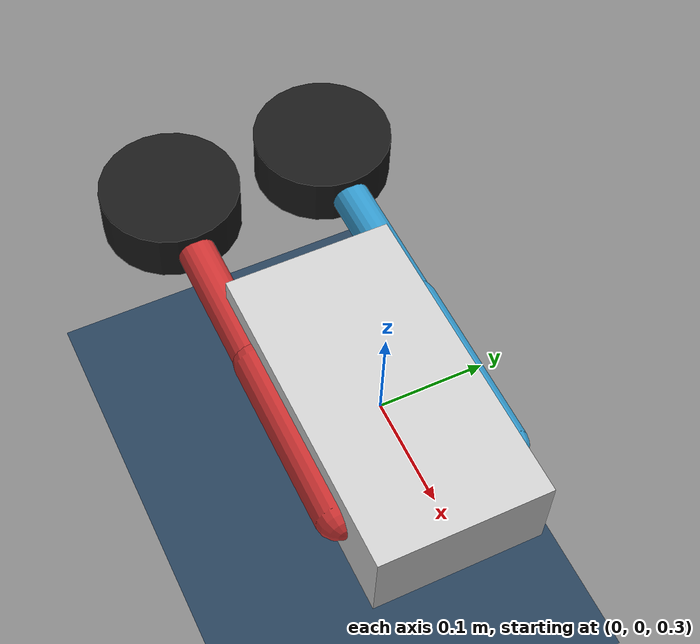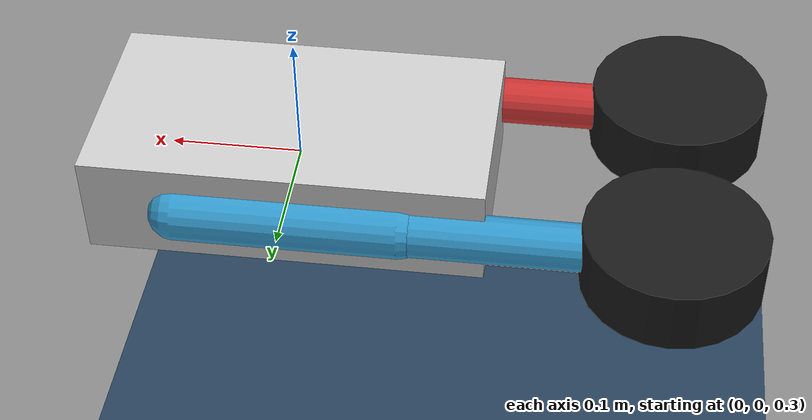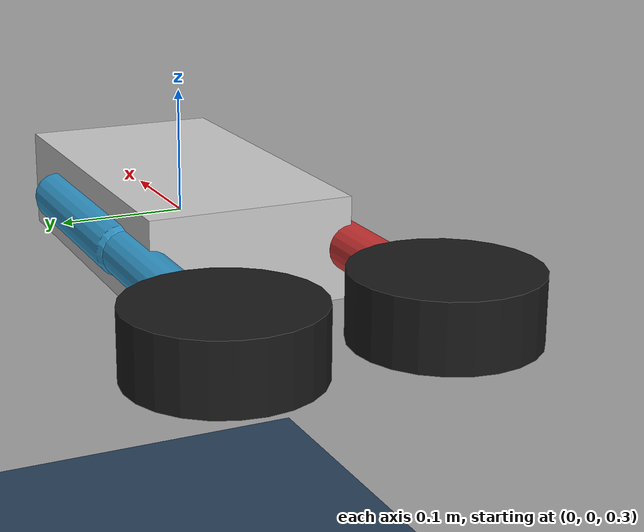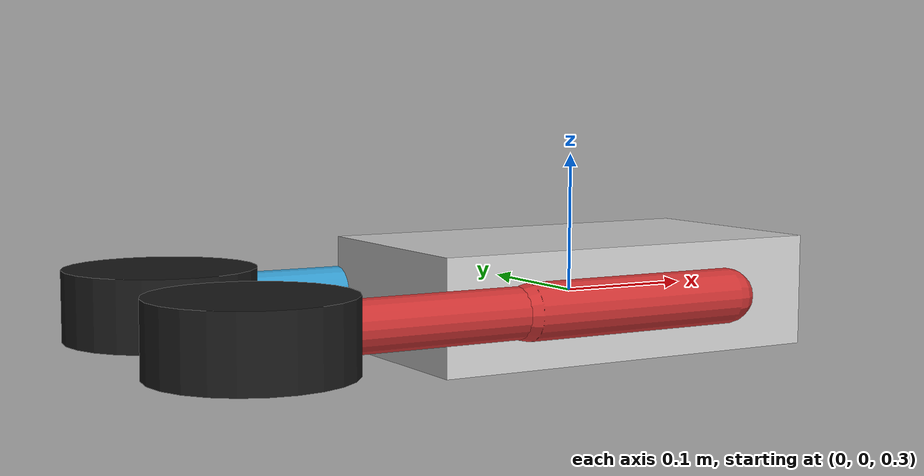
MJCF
<mujoco model="serialleg">
  <compiler angle="radian" meshdir="../meshes" autolimits="true"/>

  <option timestep="0.005" iterations="50" solver="Newton" cone="pyramidal"/>

  <asset>
    <!-- Ground plane texture -->
    <texture name="grid" type="2d" builtin="checker" width="512" height="512" rgb1=".1 .2 .3" rgb2=".2 .3 .4"/>
    <material name="grid" texture="grid" texrepeat="1 1" texuniform="true" reflectance=".2"/>
  </asset>

  <worldbody>
    <!-- Ground plane -->
    <geom name="floor" type="plane" size="0 0 .05" material="grid" friction="0.8 0.005 0.0001"/>
    <light name="spotlight" mode="targetbodycom" target="base_link" diffuse=".8 .8 .8" specular="0.3 0.3 0.3" pos="0 -6 4" cutoff="30"/>

    <!-- Robot base -->
    <body name="base_link" pos="0 0 0.30">
      <freejoint/>
      <inertial pos="0 0 0" mass="11.88" diaginertia="0.157 0.164 0.258"/>
      <geom name="base_geom" type="box" size="0.15 0.08 0.04" rgba="0.8 0.8 0.8 1" friction="0.8 0.005 0.0001"/>

      <!-- Left leg -->
      <body name="lf0_Link" pos="0.08 0.08 0">
        <inertial pos="-0.08 0 0" mass="0.30" diaginertia="0.001 0.001 0.0005"/>
        <joint name="lf0_Joint" type="hinge" axis="0 -1 0" range="-1.57 1.57" damping="0.1"/>
        <geom name="lf0_geom" type="capsule" fromto="0 0 0 -0.167 0 0" size="0.02" rgba="0.2 0.6 0.8 1"/>

        <body name="lf1_Link" pos="-0.167 0 0">
          <inertial pos="-0.10 0 0" mass="0.35" diaginertia="0.002 0.002 0.0005"/>
          <joint name="lf1_Joint" type="hinge" axis="0 -1 0" range="-0.6 0.8" damping="0.1"/>
          <geom name="lf1_geom" type="capsule" fromto="0 0 0 -0.200 0 0" size="0.018" rgba="0.2 0.6 0.8 1"/>

          <body name="l_wheel_Link" pos="-0.200 0 0">
            <inertial pos="0 0 0" mass="0.28" diaginertia="0.0005 0.0005 0.0008"/>
            <joint name="l_wheel_Joint" type="hinge" axis="0 1 0" damping="0.05"/>
            <geom name="l_wheel_geom" type="cylinder" size="0.0675 0.025" rgba="0.1 0.1 0.1 1" friction="1.0 0.005 0.0001"/>
          </body>
        </body>
      </body>

      <!-- Right leg -->
      <body name="rf0_Link" pos="0.08 -0.08 0">
        <inertial pos="-0.08 0 0" mass="0.30" diaginertia="0.001 0.001 0.0005"/>
        <joint name="rf0_Joint" type="hinge" axis="0 -1 0" range="-1.57 1.57" damping="0.1"/>
        <geom name="rf0_geom" type="capsule" fromto="0 0 0 -0.167 0 0" size="0.02" rgba="0.8 0.2 0.2 1"/>

        <body name="rf1_Link" pos="-0.167 0 0">
          <inertial pos="-0.10 0 0" mass="0.33" diaginertia="0.002 0.002 0.0005"/>
          <joint name="rf1_Joint" type="hinge" axis="0 -1 0" range="-0.6 0.8" damping="0.1"/>
          <geom name="rf1_geom" type="capsule" fromto="0 0 0 -0.200 0 0" size="0.018" rgba="0.8 0.2 0.2 1"/>

          <body name="r_wheel_Link" pos="-0.200 0 0">
            <inertial pos="0 0 0" mass="0.28" diaginertia="0.0005 0.0005 0.0008"/>
            <joint name="r_wheel_Joint" type="hinge" axis="0 1 0" damping="0.05"/>
            <geom name="r_wheel_geom" type="cylinder" size="0.0675 0.025" rgba="0.1 0.1 0.1 1" friction="1.0 0.005 0.0001"/>
          </body>
        </body>
      </body>
    </body>
  </worldbody>

  <actuator>
    <!-- 使用motor actuator进行直接力矩控制 -->
    <motor name="lf0_act" joint="lf0_Joint" gear="1" ctrllimited="true" ctrlrange="-30 30"/>
    <motor name="lf1_act" joint="lf1_Joint" gear="1" ctrllimited="true" ctrlrange="-30 30"/>
    <motor name="l_wheel_act" joint="l_wheel_Joint" gear="1" ctrllimited="true" ctrlrange="-2 2"/>
    <motor name="rf0_act" joint="rf0_Joint" gear="1" ctrllimited="true" ctrlrange="-30 30"/>
    <motor name="rf1_act" joint="rf1_Joint" gear="1" ctrllimited="true" ctrlrange="-30 30"/>
    <motor name="r_wheel_act" joint="r_wheel_Joint" gear="1" ctrllimited="true" ctrlrange="-2 2"/>
  </actuator>
</mujoco>
